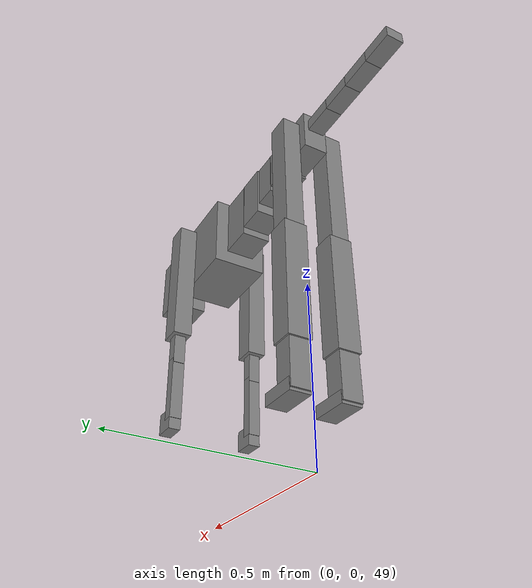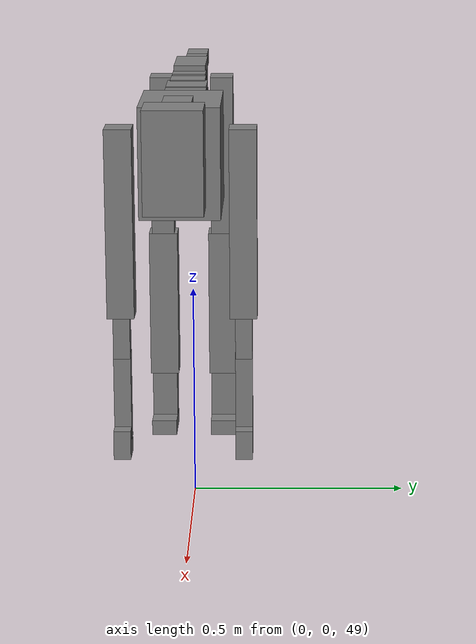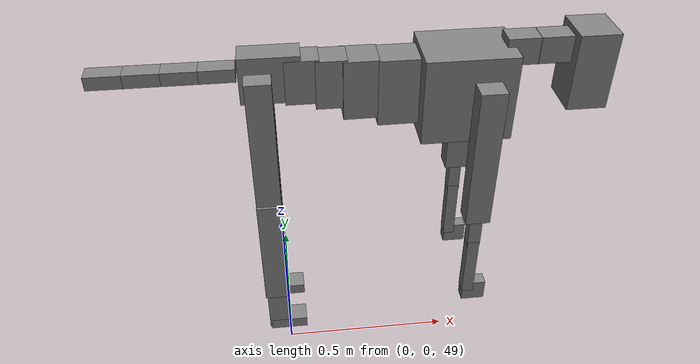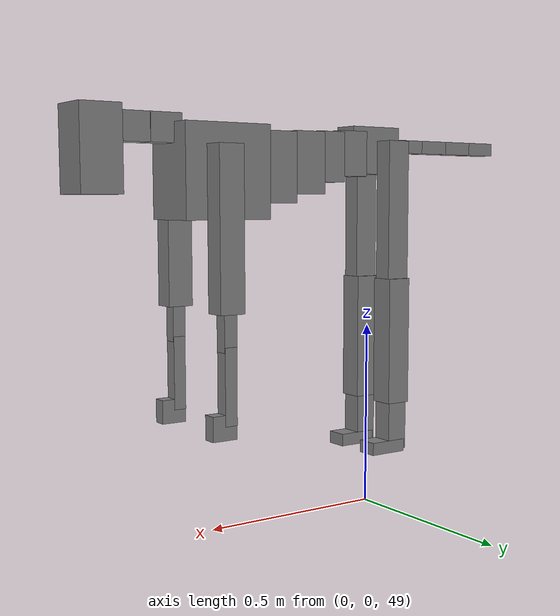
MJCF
<mujoco model="dog">

    <default>
        <joint armature="0.02" stiffness="1" damping="0.2" limited="true"/>
        <geom condim="3" friction="1 0.05 0.05" margin="0.01"/>
        <motor ctrllimited="true" ctrlrange="-1.0 1.0" forcelimited="true" gear="50"/>
    </default>

    <compiler inertiafromgeom="true" angle="radian"/>

    <option timestep="0.016" iterations="50" tolerance="1e-10" solver="Newton" jacobian="dense" cone="pyramidal"/>

    <size nconmax="20000" njmax="60000" nstack="5000000"/>
    <visual>
        <map force="0.1" zfar="30"/>
        <rgba haze="0.15 0.25 0.35 1"/>
        <quality shadowsize="2048"/>
        <global offwidth="800" offheight="800"/>
    </visual>

    <asset>
        <texture type="skybox" builtin="gradient" rgb1="0.3 0.5 0.7" rgb2="0 0 0" width="512" height="512"/>
        <texture name="texplane" type="2d" builtin="checker" rgb1=".2 .3 .4" rgb2=".1 0.15 0.2" width="512" height="512"
                 mark="cross" markrgb=".8 .8 .8"/>
        <texture name="texgeom" type="cube" builtin="flat" mark="cross" width="127" height="1278" rgb1="0.8 0.6 0.4"
                 rgb2="0.8 0.6 0.4" markrgb="1 1 1" random="0.01"/>

        <material name="matplane" reflectance="0.3" texture="texplane" texrepeat="1 1" texuniform="true"/>
        <material name="matgeom" texture="texgeom" texuniform="true" rgba="0.8 0.6 .4 1"/>
    </asset>

    <worldbody>
        <geom name="floor" pos="0 0 0" size="0 0 .25" type="plane" material="matplane" condim="3"/>

        <light directional="false" diffuse=".2 .2 .2" specular="0 0 0" pos="0 0 5" dir="0 0 -1" castshadow="false"/>
        <light mode="targetbodycom" target="torso" directional="false" diffuse=".8 .8 .8" specular="0.3 0.3 0.3"
               pos="0 0 4.0" dir="0 0 -1"/>

        <body name="root" pos="0 0 50">
            <freejoint name="root_1"/>
            <geom type="box" pos="0 0 -0.02" size="0.0774  0.0358  0.063" density="2030"/>

            <body name="spine1" pos="0.054 0 0">
                <joint name="spine1_y" axis="0 1 0" range="0 0.7" limited="true"/>
                <geom type="box" pos="0.02375 0 -0.03" size="0.04375  0.0375  0.05985" density="2030"/>

                <body name="spine2" pos="0.0612 0 0">
                    <joint name="spine2_y" axis="0 1 0" range="-0.15 0.15" limited="true"/>
                    <geom type="box" pos="0.03555  0  -0.04" size="0.04055  0.039  0.06615" density="2030"/>

                    <body name="spine3" pos="0.0730 0 0">
                        <joint name="spine3_y" axis="0 1 0" range="-0.15 0.15" limited="true"/>
                        <geom type="box" pos="0.03555  0  -0.057" size="0.04555  0.0445  0.081" density="2030"/>

                        <body name="spine4" pos="0.0780 0 0">
                            <joint name="spine4_y" axis="0 1 0" range="-0.15 0.15" limited="true"/>
                            <geom type="box" pos="0.05265  0  -0.07" size="0.05265  0.045  0.09135" density="2030"/>

                            <body name="torso" pos="0.1082 0 0">
                                <joint name="torso_y" axis="0 1 0" range="-0.15 0.15" limited="true"/>
                                <geom type="box" pos="0.11925  0  -0.085" size="0.11925  0.085  0.11745"
                                      density="2030"/>

                                <body name="neck1" pos="0.2160  0   0.0180">
                                    <joint name="neck1_y" axis="0 1 0" range="-1.2  -1" limited="true"/>
                                    <geom type="box" pos="0.0423  0  0" size="0.0423  0.03  0.036" density="2325"/>

                                    <body name="neck2" pos="0.0853  0  0">
                                        <joint name="neck2_y" axis="0 1 0" range="0.1  0" limited="true"/>
                                        <geom type="box" pos="0.0423  0  0" size="0.0423  0.03  0.036" density="2325"/>

                                        <body name="head" pos="0.0853  0  0">
                                            <joint name="head_y" axis="0 1 0" range="-0.3  -0.2" limited="true"/>
                                            <geom type="box" pos="0.0531  0  -0.055" size="0.0531  0.06  0.1044"
                                                  density="4030"/>

                                        </body>
                                    </body>
                                </body>

                                <body name="front_shoulder" pos="0.156  0   -0.0480">
                                    <joint name="front_shoulder_y" axis="0 1 0" range="-1 1.5" limited="true"/>
                                    <geom type="box" pos="0 0.13 -0.1758" size="0.0338  0.0289  0.2024" density="1158"/>
                                    <geom type="box" pos="0 -0.13 -0.1758" size="0.0338  0.0289  0.2024"
                                          density="1158"/>

                                    <body name="front_elbow" pos="0  0  -0.3515">
                                        <joint name="front_elbow_y" axis="0 1 0" range="-2 0" limited="true"/>
                                        <geom type="box" pos="0 0.13 -0.0596" size="0.0175  0.0179  0.0596"
                                              density="1081"/>
                                        <geom type="box" pos="0 -0.13 -0.0596" size="0.0175  0.0179  0.0596"
                                              density="1081"/>

                                        <body name="front_wrist" pos="0  0  -0.1192">
                                            <joint name="front_wrist_y" axis="0 1 0" range="-0.2 0" limited="true"/>
                                            <geom type="box" pos="0 0.13 -0.0830" size="0.0165  0.0183  0.0961"
                                                  density="1664"/>
                                            <geom type="box" pos="0 -0.13 -0.0830" size="0.0165  0.0183  0.0961"
                                                  density="1664"/>

                                            <body name="front_finger_end" pos="0  0  -0.1659">
                                                <joint name="front_finger_y" axis="0 1 0" range="-0.4 1"
                                                       limited="true"/>
                                                <geom type="box" pos="0.0182  0.13  -0.0161"
                                                      size="0.0334  0.0182  0.0311" density="1515"/>
                                                <geom type="box" pos="0.0182  -0.13  -0.0161"
                                                      size="0.0334  0.0182  0.0311" density="1515"/>

                                            </body>

                                        </body>
                                    </body>
                                </body>

                            </body>
                        </body>
                    </body>
                </body>
            </body>

            <body name="back_hip" pos="-0.03 0 -0.018">
                <joint name="back_hip_y" axis="0 1 0" range="-1.5 0.3" limited="true"/>
                <geom type="box" pos="0 0.07 -0.1816" size="0.0333  0.0261  0.2044" density="1154"/>
                <geom type="box" pos="0 -0.07 -0.1816" size="0.0333  0.0261  0.2044" density="1154"/>

                <body name="back_knee" pos="0  0  -0.3632">
                    <joint name="back_knee_y" axis="0 1 0" range="0 2.8" limited="true"/>
                    <geom type="box" pos="0 0.07 -0.1553" size="0.0337  0.0333  0.1708" density="1227"/>
                    <geom type="box" pos="0 -0.07 -0.1553" size="0.0337  0.0333  0.1708" density="1227"/>

                    <body name="back_ankle" pos="0  0  -0.3106">
                        <joint name="back_ankle_y" axis="0 1 0" range="-2.2 0" limited="true"/>
                        <geom type="box" pos="0 0.07 -0.0674" size="0.0289  0.0289  0.0787" density="1284"/>
                        <geom type="box" pos="0 -0.07 -0.0674" size="0.0289  0.0289  0.0787" density="1284"/>

                        <body name="back_toe_end" pos="0  0  -0.1348">
                            <joint name="back_toe_y" axis="0 1 0" range="-0.4 1" limited="true"/>
                            <geom type="box" pos="0.0291  0.07  -0.0020" size="0.0533  0.0291  0.0170" density="1515"/>
                            <geom type="box" pos="0.0291  -0.07  -0.0020" size="0.0533  0.0291  0.0170" density="1515"/>

                        </body>
                    </body>
                </body>
            </body>

            <body name="tail1" pos="-0.074 0 -0.006">
                <joint name="tail1_y" axis="0 1 0" range="-0.2 0.2" limited="true"/>
                <geom type="box" pos="-0.0536  0  0" size="0.045  0.025  0.0175" density="1587"/>

                <body name="tail2" pos="-0.09 0 0">
                    <joint name="tail2_y" axis="0 1 0" range="-0.2 0.2" limited="true"/>
                    <geom type="box" pos="-0.0536  0  0" size="0.045  0.025  0.0175" density="1587"/>

                    <body name="tail3" pos="-0.09 0 0">
                        <joint name="tail3_y" axis="0 1 0" range="-0.2 0.2" limited="true"/>
                        <geom type="box" pos="-0.0536  0  0" size="0.045  0.025  0.0175" density="1587"/>

                        <body name="tail4" pos="-0.09 0 0">
                            <joint name="tail4_y" axis="0 1 0" range="-0.2 0.2" limited="true"/>
                            <geom type="box" pos="-0.0536  0  0" size="0.045  0.025  0.0175" density="1587"/>

                        </body>
                    </body>
                </body>
            </body>
        </body>
    </worldbody>

    <actuator>
        <motor joint="spine1_y" forcerange="-150 150     "/>
        <motor joint="spine2_y" forcerange="-150 150     "/>
        <motor joint="spine3_y" forcerange="-150 150     "/>
        <motor joint="spine4_y" forcerange="-150 150     "/>
        <motor joint="torso_y" forcerange="-150 150     "/>
        <motor joint="neck1_y" forcerange="-100 100       "/>
        <motor joint="neck2_y" forcerange="-100 100       "/>
        <motor joint="head_y" forcerange="-150 150       "/>
        <motor joint="front_shoulder_y" forcerange="-170.60 121.75"/>
        <motor joint="front_elbow_y" forcerange="-107.41 122.76"/>
        <motor joint="front_wrist_y" forcerange="-85.66 60.73"/>
        <motor joint="front_finger_y" forcerange="-30.44 26.71"/>
        <motor joint="back_hip_y" forcerange="-303.83 244.80"/>
        <motor joint="back_knee_y" forcerange="-321.48 362.20"/>
        <motor joint="back_angle_y" forcerange="-230.91 131.90"/>
        <motor joint="back_toe_y" forcerange="-81.69 70.84"/>
        <motor joint="tail1_y" forcerange="-50 50     "/>
        <motor joint="tail2_y" forcerange="-50 50     "/>
        <motor joint="tail3_y" forcerange="-50 50     "/>
        <motor joint="tail4_y" forcerange="-50 50     "/>
    </actuator>
</mujoco>
